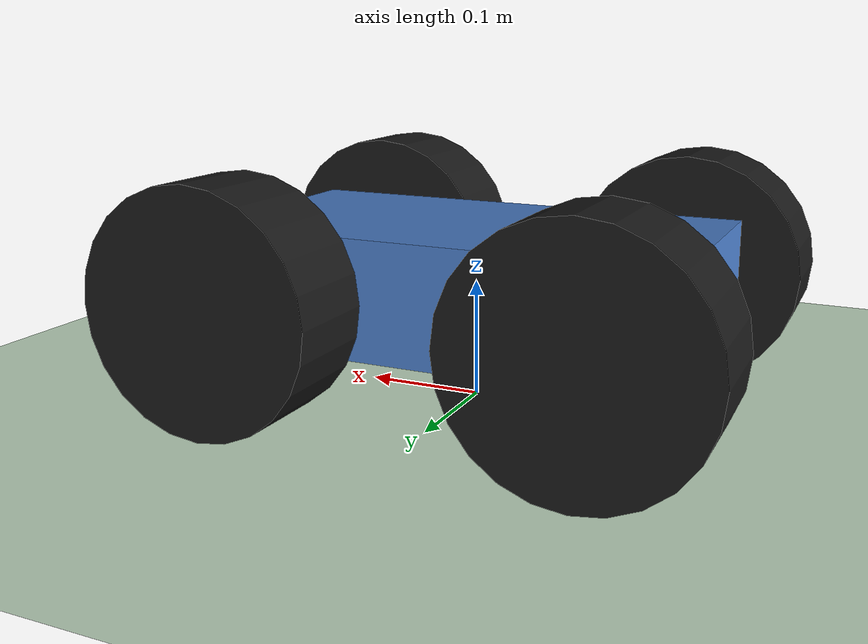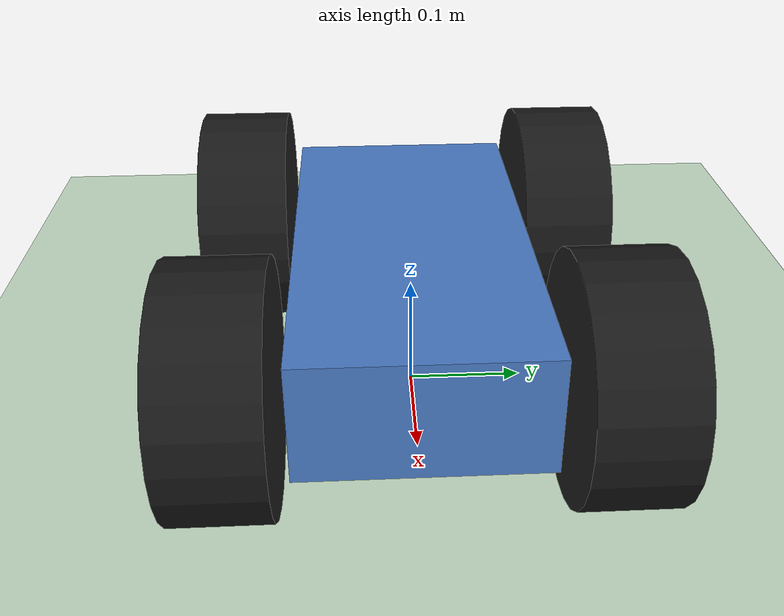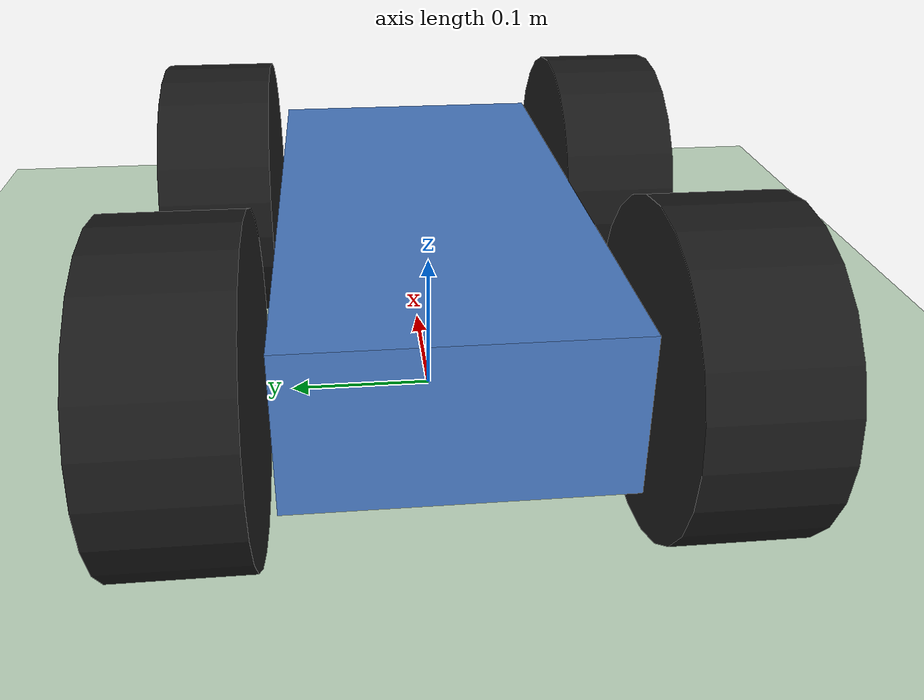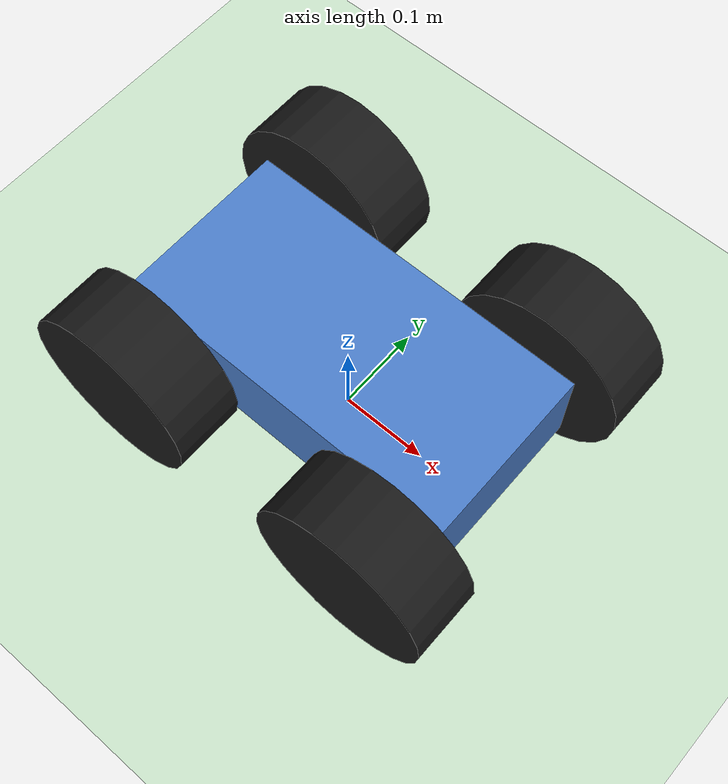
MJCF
<mujoco model="simple_car_improved">
  <compiler angle="radian" coordinate="local"/>

  <option timestep="0.002" gravity="0 0 -9.81" iterations="50" solver="Newton"/>

  <default>
    <joint type="hinge" axis="0 1 0" damping="0.5" armature="0.01"/>
    <!-- 车轮几何：圆柱体半径 0.1，半长 0.04（即总长 0.08） -->
    <geom type="cylinder" size="0.1 0.04" friction="1.0 0.1 0.1" condim="4" rgba="0.2 0.2 0.2 1"/>
    <!-- 错误：motor 元素不支持 ctrltype，且已在下方的 actuator 中正确定义，因此这里注释掉 -->
  </default>

  <worldbody>
    <!-- 地面和灯光 -->
    <light name="light0" pos="0 0 3" dir="0 0 -1"/>
    <geom name="floor" type="plane" size="2 2 0.1" rgba="0.8 0.9 0.8 1" friction="1.0 0.1 0.1"/>

    <!-- 车身 -->
    <body name="chassis" pos="0 0 0.1">
      <inertial pos="0 0 0" mass="1.0" diaginertia="0.01 0.02 0.01"/>
      <geom name="chassis_geom" type="box" size="0.2 0.1 0.05" rgba="0.3 0.5 0.8 1"/>

      <!-- 左前轮 (LF) -->
      <body name="wheel_lf" pos="0.15 0.15 0">
        <joint name="wheel_lf_joint"/>
        <geom name="wheel_lf_geom" fromto="0 -0.04 0 0 0.04 0" rgba="0.1 0.1 0.1 1"/>
      </body>

      <!-- 右前轮 (RF) -->
      <body name="wheel_rf" pos="0.15 -0.15 0">
        <joint name="wheel_rf_joint"/>
        <geom name="wheel_rf_geom" fromto="0 -0.04 0 0 0.04 0" rgba="0.1 0.1 0.1 1"/>
      </body>

      <!-- 左后轮 (LB) -->
      <body name="wheel_lb" pos="-0.15 0.15 0">
        <joint name="wheel_lb_joint"/>
        <geom name="wheel_lb_geom" fromto="0 -0.04 0 0 0.04 0" rgba="0.1 0.1 0.1 1"/>
      </body>

      <!-- 右后轮 (RB) -->
      <body name="wheel_rb" pos="-0.15 -0.15 0">
        <joint name="wheel_rb_joint"/>
        <geom name="wheel_rb_geom" fromto="0 -0.04 0 0 0.04 0" rgba="0.1 0.1 0.1 1"/>
      </body>
    </body>
  </worldbody>

  <actuator>
    <!-- 速度控制执行器（直接设定目标角速度） -->
    <velocity name="lf_motor" joint="wheel_lf_joint" ctrlrange="-10 10"/>
    <velocity name="rf_motor" joint="wheel_rf_joint" ctrlrange="-10 10"/>
    <velocity name="lb_motor" joint="wheel_lb_joint" ctrlrange="-10 10"/>
    <velocity name="rb_motor" joint="wheel_rb_joint" ctrlrange="-10 10"/>
  </actuator>
</mujoco>
